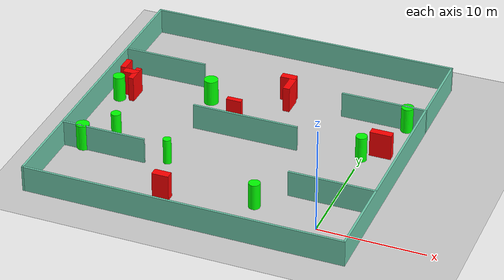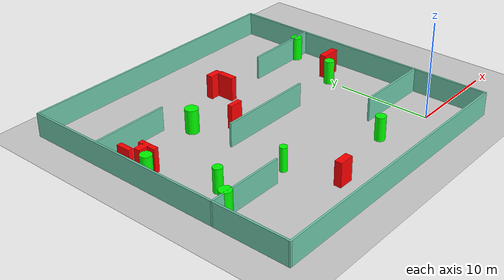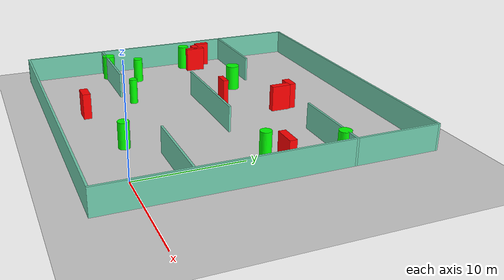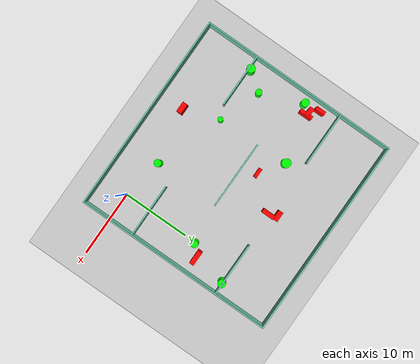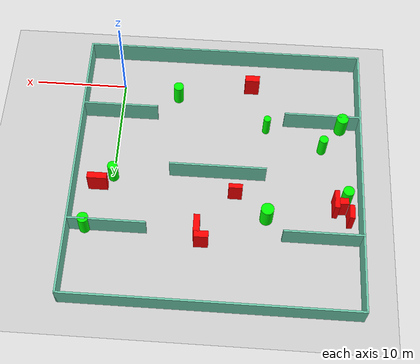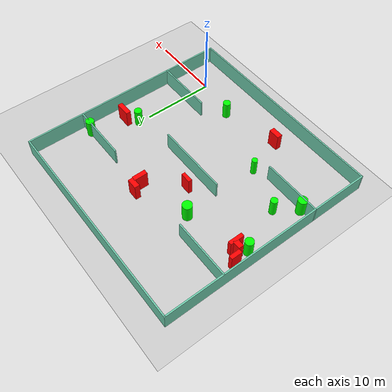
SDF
<sdf version="1.7">
 <world name="default">
  <light name="sun" type="directional">
   <pose>0 0 10 0 -0 0</pose>
   <diffuse>0.8 0.8 0.8 1</diffuse>
   <specular>0.2 0.2 0.2 1</specular>
   <attenuation>
    <range>1000</range>
    <constant>0.9</constant>
    <linear>0.01</linear>
    <quadratic>0.001</quadratic>
   </attenuation>
   <direction>-0.5 0.1 -0.9</direction>
   <spot><inner_angle>0</inner_angle><outer_angle>0</outer_angle><falloff>0</falloff></spot>
  </light>
  <model name="ground_plane">
   <static>1</static>
   <link name="link">
    <collision name="collision">
     <geometry><plane><normal>0 0 1</normal><size>100 100</size></plane></geometry>
     <surface>
      <contact><collide_bitmask>65535</collide_bitmask></contact>
      <friction><ode><mu>100</mu><mu2>50</mu2></ode></friction>
     </surface>
    </collision>
    <visual name="visual">
     <cast_shadows>0</cast_shadows>
     <geometry><plane><normal>0 0 1</normal><size>100 100</size></plane></geometry>
     <material>
      <script><uri>file://media/materials/scripts/gazebo.material</uri><name>Gazebo/Grey</name></script>
     </material>
    </visual>
   </link>
  </model>
  <gravity>0 0 -9.8</gravity>
  <magnetic_field>6e-06 2.3e-05 -4.2e-05</magnetic_field>
  <atmosphere type="adiabatic"/>
  <physics type="ode">
   <max_step_size>0.001</max_step_size>
   <real_time_factor>1</real_time_factor>
   <real_time_update_rate>1000</real_time_update_rate>
  </physics>
  <scene><ambient>0.4 0.4 0.4 1</ambient><background>0.7 0.7 0.7 1</background><shadows>1</shadows></scene>
  <spherical_coordinates>
   <surface_model>EARTH_WGS84</surface_model>
   <latitude_deg>0</latitude_deg>
   <longitude_deg>0</longitude_deg>
   <elevation>0</elevation>
   <heading_deg>0</heading_deg>
  </spherical_coordinates>
  <model name="my_base_walls">
   <link name="Wall_10">
    <collision name="Wall_10_Collision">
     <geometry><box><size>8.2 0.2 2.5</size></box></geometry>
     <pose>0 0 1.25 0 -0 0</pose>
    </collision>
    <visual name="Wall_10_Visual">
     <pose>0 0 1.25 0 -0 0</pose>
     <geometry><box><size>8.2 0.2 2.5</size></box></geometry>
     <material>
      <script><uri>file://media/materials/scripts/gazebo.material</uri><name>Gazebo/Grey</name></script>
      <ambient>0.435294 0.796078 0.67451 1</ambient>
     </material>
     <meta><layer>0</layer></meta>
    </visual>
    <pose>-11 -7 0 0 -0 0</pose>
   </link>
   <link name="Wall_12">
    <collision name="Wall_12_Collision">
     <geometry><box><size>8.2 0.2 2.5</size></box></geometry>
     <pose>0 0 1.25 0 -0 0</pose>
    </collision>
    <visual name="Wall_12_Visual">
     <pose>0 0 1.25 0 -0 0</pose>
     <geometry><box><size>8.2 0.2 2.5</size></box></geometry>
     <material>
      <script><uri>file://media/materials/scripts/gazebo.material</uri><name>Gazebo/Grey</name></script>
      <ambient>0.435294 0.796078 0.67451 1</ambient>
     </material>
     <meta><layer>0</layer></meta>
    </visual>
    <pose>-11 7 0 0 -0 0</pose>
   </link>
   <link name="Wall_14">
    <collision name="Wall_14_Collision">
     <geometry><box><size>8.2 0.2 2.5</size></box></geometry>
     <pose>0 0 1.25 0 -0 0</pose>
    </collision>
    <visual name="Wall_14_Visual">
     <pose>0 0 1.25 0 -0 0</pose>
     <geometry><box><size>8.2 0.2 2.5</size></box></geometry>
     <material>
      <script><uri>file://media/materials/scripts/gazebo.material</uri><name>Gazebo/Grey</name></script>
      <ambient>0.435294 0.796078 0.67451 1</ambient>
     </material>
     <meta><layer>0</layer></meta>
    </visual>
    <pose>11 7 0 0 -0 3.14159</pose>
   </link>
   <link name="Wall_16">
    <collision name="Wall_16_Collision">
     <geometry><box><size>10.2 0.2 2.5</size></box></geometry>
     <pose>0 0 1.25 0 -0 0</pose>
    </collision>
    <visual name="Wall_16_Visual">
     <pose>0 0 1.25 0 -0 0</pose>
     <geometry><box><size>10.2 0.2 2.5</size></box></geometry>
     <material>
      <script><uri>file://media/materials/scripts/gazebo.material</uri><name>Gazebo/Grey</name></script>
      <ambient>0.435294 0.796078 0.67451 1</ambient>
     </material>
     <meta><layer>0</layer></meta>
    </visual>
    <pose>0 0 0 0 -0 3.14159</pose>
   </link>
   <link name="Wall_2">
    <collision name="Wall_2_Collision">
     <geometry><box><size>30.2 0.2 2.5</size></box></geometry>
     <pose>0 0 1.25 0 -0 0</pose>
    </collision>
    <visual name="Wall_2_Visual">
     <pose>0 0 1.25 0 -0 0</pose>
     <geometry><box><size>30.2 0.2 2.5</size></box></geometry>
     <material>
      <script><uri>file://media/materials/scripts/gazebo.material</uri><name>Gazebo/Grey</name></script>
      <ambient>0.435294 0.796078 0.67451 1</ambient>
     </material>
     <meta><layer>0</layer></meta>
    </visual>
    <pose>0 -15 0 0 -0 3.14159</pose>
   </link>
   <link name="Wall_3">
    <collision name="Wall_3_Collision">
     <geometry><box><size>30.2 0.2 2.5</size></box></geometry>
     <pose>0 0 1.25 0 -0 0</pose>
    </collision>
    <visual name="Wall_3_Visual">
     <pose>0 0 1.25 0 -0 0</pose>
     <geometry><box><size>30.2 0.2 2.5</size></box></geometry>
     <material>
      <script><uri>file://media/materials/scripts/gazebo.material</uri><name>Gazebo/Grey</name></script>
      <ambient>0.435294 0.796078 0.67451 1</ambient>
     </material>
     <meta><layer>0</layer></meta>
    </visual>
    <pose>-15 0 0 0 -0 1.5708</pose>
   </link>
   <link name="Wall_4">
    <collision name="Wall_4_Collision">
     <geometry><box><size>30.2 0.2 2.5</size></box></geometry>
     <pose>0 0 1.25 0 -0 0</pose>
    </collision>
    <visual name="Wall_4_Visual">
     <pose>0 0 1.25 0 -0 0</pose>
     <geometry><box><size>30.2 0.2 2.5</size></box></geometry>
     <material>
      <script><uri>file://media/materials/scripts/gazebo.material</uri><name>Gazebo/Grey</name></script>
      <ambient>0.435294 0.796078 0.67451 1</ambient>
     </material>
     <meta><layer>0</layer></meta>
    </visual>
    <pose>0 15 0 0 -0 0</pose>
   </link>
   <link name="Wall_6">
    <collision name="Wall_6_Collision">
     <geometry><box><size>30.2 0.2 2.5</size></box></geometry>
     <pose>0 0 1.25 0 -0 0</pose>
    </collision>
    <visual name="Wall_6_Visual">
     <pose>0 0 1.25 0 -0 0</pose>
     <geometry><box><size>30.2 0.2 2.5</size></box></geometry>
     <material>
      <script><uri>file://media/materials/scripts/gazebo.material</uri><name>Gazebo/Grey</name></script>
      <ambient>0.435294 0.796078 0.67451 1</ambient>
     </material>
     <meta><layer>0</layer></meta>
    </visual>
    <pose>15 0 0 0 -0 1.5708</pose>
   </link>
   <link name="Wall_8">
    <collision name="Wall_8_Collision">
     <geometry><box><size>8.2 0.2 2.5</size></box></geometry>
     <pose>0 0 1.25 0 -0 0</pose>
    </collision>
    <visual name="Wall_8_Visual">
     <pose>0 0 1.25 0 -0 0</pose>
     <geometry><box><size>8.2 0.2 2.5</size></box></geometry>
     <material>
      <script><uri>file://media/materials/scripts/gazebo.material</uri><name>Gazebo/Grey</name></script>
      <ambient>0.435294 0.796078 0.67451 1</ambient>
     </material>
     <meta><layer>0</layer></meta>
    </visual>
    <pose>11 -7 0 0 -0 3.14159</pose>
   </link>
   <static>1</static>
   <pose>-11 11 0 0 -0 0</pose>
  </model>
  <model name="cylinder1">
   <static>1</static>
   <link name="link">
    <inertial>
     <mass>1</mass>
     <inertia><ixx>0.5</ixx><ixy>0</ixy><ixz>0</ixz><iyy>0.5</iyy><iyz>0</iyz><izz>1</izz></inertia>
    </inertial>
    <collision name="collision">
     <geometry><cylinder><radius>0.5321029917080726</radius><length>2.5</length></cylinder></geometry>
    </collision>
    <visual name="visual">
     <geometry><cylinder><radius>0.5321029917080726</radius><length>2.5</length></cylinder></geometry>
     <material>
      <ambient>0 1 0 1</ambient>
      <diffuse>0 1 0 1</diffuse>
      <specular>0.1 0.1 0.1 1</specular>
      <emissive>0 0 0 0</emissive>
     </material>
    </visual>
   </link>
   <pose>-6.178851793777559 1.2313864472938043 1.25 0 0 0</pose>
  </model>
  <model name="cylinder2">
   <static>1</static>
   <link name="link">
    <inertial>
     <mass>1</mass>
     <inertia><ixx>0.5</ixx><ixy>0</ixy><ixz>0</ixz><iyy>0.5</iyy><iyz>0</iyz><izz>1</izz></inertia>
    </inertial>
    <collision name="collision">
     <geometry><cylinder><radius>0.3874722973791798</radius><length>2.5</length></cylinder></geometry>
    </collision>
    <visual name="visual">
     <geometry><cylinder><radius>0.3874722973791798</radius><length>2.5</length></cylinder></geometry>
     <material>
      <ambient>0 1 0 1</ambient>
      <diffuse>0 1 0 1</diffuse>
      <specular>0.1 0.1 0.1 1</specular>
      <emissive>0 0 0 0</emissive>
     </material>
    </visual>
   </link>
   <pose>-16.034354781931803 4.8110397687181425 1.25 0 0 0</pose>
  </model>
  <model name="cylinder3">
   <static>1</static>
   <link name="link">
    <inertial>
     <mass>1</mass>
     <inertia><ixx>0.5</ixx><ixy>0</ixy><ixz>0</ixz><iyy>0.5</iyy><iyz>0</iyz><izz>1</izz></inertia>
    </inertial>
    <collision name="collision">
     <geometry><cylinder><radius>0.5289550338817719</radius><length>2.5</length></cylinder></geometry>
    </collision>
    <visual name="visual">
     <geometry><cylinder><radius>0.5289550338817719</radius><length>2.5</length></cylinder></geometry>
     <material>
      <ambient>0 1 0 1</ambient>
      <diffuse>0 1 0 1</diffuse>
      <specular>0.1 0.1 0.1 1</specular>
      <emissive>0 0 0 0</emissive>
     </material>
    </visual>
   </link>
   <pose>-0.006958526481039229 11.741200897838487 1.25 0 0 0</pose>
  </model>
  <model name="cylinder4">
   <static>1</static>
   <link name="link">
    <inertial>
     <mass>1</mass>
     <inertia><ixx>0.5</ixx><ixy>0</ixy><ixz>0</ixz><iyy>0.5</iyy><iyz>0</iyz><izz>1</izz></inertia>
    </inertial>
    <collision name="collision">
     <geometry><cylinder><radius>0.5821995532700475</radius><length>2.5</length></cylinder></geometry>
    </collision>
    <visual name="visual">
     <geometry><cylinder><radius>0.5821995532700475</radius><length>2.5</length></cylinder></geometry>
     <material>
      <ambient>0 1 0 1</ambient>
      <diffuse>0 1 0 1</diffuse>
      <specular>0.1 0.1 0.1 1</specular>
      <emissive>0 0 0 0</emissive>
     </material>
    </visual>
   </link>
   <pose>2.3132340078453595 17.909018125701 1.25 0 0 0</pose>
  </model>
  <model name="cylinder5">
   <static>1</static>
   <link name="link">
    <inertial>
     <mass>1</mass>
     <inertia><ixx>0.5</ixx><ixy>0</ixy><ixz>0</ixz><iyy>0.5</iyy><iyz>0</iyz><izz>1</izz></inertia>
    </inertial>
    <collision name="collision">
     <geometry><cylinder><radius>0.5769715447238897</radius><length>2.5</length></cylinder></geometry>
    </collision>
    <visual name="visual">
     <geometry><cylinder><radius>0.5769715447238897</radius><length>2.5</length></cylinder></geometry>
     <material>
      <ambient>0 1 0 1</ambient>
      <diffuse>0 1 0 1</diffuse>
      <specular>0.1 0.1 0.1 1</specular>
      <emissive>0 0 0 0</emissive>
     </material>
    </visual>
   </link>
   <pose>-24.576283955916335 13.063199826040147 1.25 0 0 0</pose>
  </model>
  <model name="cylinder6">
   <static>1</static>
   <link name="link">
    <inertial>
     <mass>1</mass>
     <inertia><ixx>0.5</ixx><ixy>0</ixy><ixz>0</ixz><iyy>0.5</iyy><iyz>0</iyz><izz>1</izz></inertia>
    </inertial>
    <collision name="collision">
     <geometry><cylinder><radius>0.6710727270804144</radius><length>2.5</length></cylinder></geometry>
    </collision>
    <visual name="visual">
     <geometry><cylinder><radius>0.6710727270804144</radius><length>2.5</length></cylinder></geometry>
     <material>
      <ambient>0 1 0 1</ambient>
      <diffuse>0 1 0 1</diffuse>
      <specular>0.1 0.1 0.1 1</specular>
      <emissive>0 0 0 0</emissive>
     </material>
    </visual>
   </link>
   <pose>-16.297516532493205 15.693760124120935 1.25 0 0 0</pose>
  </model>
  <model name="cylinder7">
   <static>1</static>
   <link name="link">
    <inertial>
     <mass>1</mass>
     <inertia><ixx>0.5</ixx><ixy>0</ixy><ixz>0</ixz><iyy>0.5</iyy><iyz>0</iyz><izz>1</izz></inertia>
    </inertial>
    <collision name="collision">
     <geometry><cylinder><radius>0.4708284579264572</radius><length>2.5</length></cylinder></geometry>
    </collision>
    <visual name="visual">
     <geometry><cylinder><radius>0.4708284579264572</radius><length>2.5</length></cylinder></geometry>
     <material>
      <ambient>0 1 0 1</ambient>
      <diffuse>0 1 0 1</diffuse>
      <specular>0.1 0.1 0.1 1</specular>
      <emissive>0 0 0 0</emissive>
     </material>
    </visual>
   </link>
   <pose>-22.09027280639189 7.008629668123877 1.25 0 0 0</pose>
  </model>
  <model name="cylinder8">
   <static>1</static>
   <link name="link">
    <inertial>
     <mass>1</mass>
     <inertia><ixx>0.5</ixx><ixy>0</ixy><ixz>0</ixz><iyy>0.5</iyy><iyz>0</iyz><izz>1</izz></inertia>
    </inertial>
    <collision name="collision">
     <geometry><cylinder><radius>0.62907861194372</radius><length>2.5</length></cylinder></geometry>
    </collision>
    <visual name="visual">
     <geometry><cylinder><radius>0.62907861194372</radius><length>2.5</length></cylinder></geometry>
     <material>
      <ambient>0 1 0 1</ambient>
      <diffuse>0 1 0 1</diffuse>
      <specular>0.1 0.1 0.1 1</specular>
      <emissive>0 0 0 0</emissive>
     </material>
    </visual>
   </link>
   <pose>-24.13715950143857 4.258635239068951 1.25 0 0 0</pose>
  </model>
  <model name="box1">
   <static>1</static>
   <link name="link">
    <inertial>
     <mass>1</mass>
     <inertia><ixx>0.083</ixx><ixy>0</ixy><ixz>0</ixz><iyy>0.083</iyy><iyz>0</iyz><izz>0.083</izz></inertia>
    </inertial>
    <collision name="collision">
     <geometry><box><size>0.6513381800881808 1.8726287540104805 2.5</size></box></geometry>
    </collision>
    <visual name="visual">
     <geometry><box><size>0.6513381800881808 1.8726287540104805 2.5</size></box></geometry>
     <material>
      <ambient>1 0 0 1</ambient>
      <diffuse>1 0 0 1</diffuse>
      <specular>0.1 0.1 0.1 1</specular>
      <emissive>0 0 0 0</emissive>
     </material>
    </visual>
    <sensor name="my_contact" type="contact">
     <contact><collision>box_collision</collision><topic>__default_topic__</topic></contact>
    </sensor>
   </link>
   <pose>-9.19038892731373 17.70254070416365 1.25 0 0 0</pose>
  </model>
  <model name="box2">
   <static>1</static>
   <link name="link">
    <inertial>
     <mass>1</mass>
     <inertia><ixx>0.083</ixx><ixy>0</ixy><ixz>0</ixz><iyy>0.083</iyy><iyz>0</iyz><izz>0.083</izz></inertia>
    </inertial>
    <collision name="collision">
     <geometry><box><size>1.4350941444565155 0.7114041645365019 2.5</size></box></geometry>
    </collision>
    <visual name="visual">
     <geometry><box><size>1.4350941444565155 0.7114041645365019 2.5</size></box></geometry>
     <material>
      <ambient>1 0 0 1</ambient>
      <diffuse>1 0 0 1</diffuse>
      <specular>0.1 0.1 0.1 1</specular>
      <emissive>0 0 0 0</emissive>
     </material>
    </visual>
    <sensor name="my_contact" type="contact">
     <contact><collision>box_collision</collision><topic>__default_topic__</topic></contact>
    </sensor>
   </link>
   <pose>-23.83944496920132 14.264660221865032 1.25 0 0 0</pose>
  </model>
  <model name="box3">
   <static>1</static>
   <link name="link">
    <inertial>
     <mass>1</mass>
     <inertia><ixx>0.083</ixx><ixy>0</ixy><ixz>0</ixz><iyy>0.083</iyy><iyz>0</iyz><izz>0.083</izz></inertia>
    </inertial>
    <collision name="collision">
     <geometry><box><size>0.5474036476696196 1.4818888767918919 2.5</size></box></geometry>
    </collision>
    <visual name="visual">
     <geometry><box><size>0.5474036476696196 1.4818888767918919 2.5</size></box></geometry>
     <material>
      <ambient>1 0 0 1</ambient>
      <diffuse>1 0 0 1</diffuse>
      <specular>0.1 0.1 0.1 1</specular>
      <emissive>0 0 0 0</emissive>
     </material>
    </visual>
    <sensor name="my_contact" type="contact">
     <contact><collision>box_collision</collision><topic>__default_topic__</topic></contact>
    </sensor>
   </link>
   <pose>-24.87105911613631 15.384164838592639 1.25 0 0 0</pose>
  </model>
  <model name="box4">
   <static>1</static>
   <link name="link">
    <inertial>
     <mass>1</mass>
     <inertia><ixx>0.083</ixx><ixy>0</ixy><ixz>0</ixz><iyy>0.083</iyy><iyz>0</iyz><izz>0.083</izz></inertia>
    </inertial>
    <collision name="collision">
     <geometry><box><size>1.4477510640537705 0.5098120579199887 2.5</size></box></geometry>
    </collision>
    <visual name="visual">
     <geometry><box><size>1.4477510640537705 0.5098120579199887 2.5</size></box></geometry>
     <material>
      <ambient>1 0 0 1</ambient>
      <diffuse>1 0 0 1</diffuse>
      <specular>0.1 0.1 0.1 1</specular>
      <emissive>0 0 0 0</emissive>
     </material>
    </visual>
    <sensor name="my_contact" type="contact">
     <contact><collision>box_collision</collision><topic>__default_topic__</topic></contact>
    </sensor>
   </link>
   <pose>-12.961204964288692 13.25885949105987 1.25 0 0 0</pose>
  </model>
  <model name="box5">
   <static>1</static>
   <link name="link">
    <inertial>
     <mass>1</mass>
     <inertia><ixx>0.083</ixx><ixy>0</ixy><ixz>0</ixz><iyy>0.083</iyy><iyz>0</iyz><izz>0.083</izz></inertia>
    </inertial>
    <collision name="collision">
     <geometry><box><size>1.574433959700796 0.7606431317459553 2.5</size></box></geometry>
    </collision>
    <visual name="visual">
     <geometry><box><size>1.574433959700796 0.7606431317459553 2.5</size></box></geometry>
     <material>
      <ambient>1 0 0 1</ambient>
      <diffuse>1 0 0 1</diffuse>
      <specular>0.1 0.1 0.1 1</specular>
      <emissive>0 0 0 0</emissive>
     </material>
    </visual>
    <sensor name="my_contact" type="contact">
     <contact><collision>box_collision</collision><topic>__default_topic__</topic></contact>
    </sensor>
   </link>
   <pose>-14.283893217410743 -0.3842063065813992 1.25 0 0 0</pose>
  </model>
  <model name="box6">
   <static>1</static>
   <link name="link">
    <inertial>
     <mass>1</mass>
     <inertia><ixx>0.083</ixx><ixy>0</ixy><ixz>0</ixz><iyy>0.083</iyy><iyz>0</iyz><izz>0.083</izz></inertia>
    </inertial>
    <collision name="collision">
     <geometry><box><size>1.4752369848322504 0.7151098977308783 2.5</size></box></geometry>
    </collision>
    <visual name="visual">
     <geometry><box><size>1.4752369848322504 0.7151098977308783 2.5</size></box></geometry>
     <material>
      <ambient>1 0 0 1</ambient>
      <diffuse>1 0 0 1</diffuse>
      <specular>0.1 0.1 0.1 1</specular>
      <emissive>0 0 0 0</emissive>
     </material>
    </visual>
    <sensor name="my_contact" type="contact">
     <contact><collision>box_collision</collision><topic>__default_topic__</topic></contact>
    </sensor>
   </link>
   <pose>-9.724567989263809 18.92391796286434 1.25 0 0 0</pose>
  </model>
  <model name="box7">
   <static>1</static>
   <link name="link">
    <inertial>
     <mass>1</mass>
     <inertia><ixx>0.083</ixx><ixy>0</ixy><ixz>0</ixz><iyy>0.083</iyy><iyz>0</iyz><izz>0.083</izz></inertia>
    </inertial>
    <collision name="collision">
     <geometry><box><size>0.5179398644079308 1.9793225495714106 2.5</size></box></geometry>
    </collision>
    <visual name="visual">
     <geometry><box><size>0.5179398644079308 1.9793225495714106 2.5</size></box></geometry>
     <material>
      <ambient>1 0 0 1</ambient>
      <diffuse>1 0 0 1</diffuse>
      <specular>0.1 0.1 0.1 1</specular>
      <emissive>0 0 0 0</emissive>
     </material>
    </visual>
    <sensor name="my_contact" type="contact">
     <contact><collision>box_collision</collision><topic>__default_topic__</topic></contact>
    </sensor>
   </link>
   <pose>-23.379444429151206 14.057116265430853 1.25 0 0 0</pose>
  </model>
  <model name="box8">
   <static>1</static>
   <link name="link">
    <inertial>
     <mass>1</mass>
     <inertia><ixx>0.083</ixx><ixy>0</ixy><ixz>0</ixz><iyy>0.083</iyy><iyz>0</iyz><izz>0.083</izz></inertia>
    </inertial>
    <collision name="collision">
     <geometry><box><size>2.057129489454618 0.6920225283760322 2.5</size></box></geometry>
    </collision>
    <visual name="visual">
     <geometry><box><size>2.057129489454618 0.6920225283760322 2.5</size></box></geometry>
     <material>
      <ambient>1 0 0 1</ambient>
      <diffuse>1 0 0 1</diffuse>
      <specular>0.1 0.1 0.1 1</specular>
      <emissive>0 0 0 0</emissive>
     </material>
    </visual>
    <sensor name="my_contact" type="contact">
     <contact><collision>box_collision</collision><topic>__default_topic__</topic></contact>
    </sensor>
   </link>
   <pose>1.4786673881847747 12.979837142979685 1.25 0 0 0</pose>
  </model>
 </world>
</sdf>
